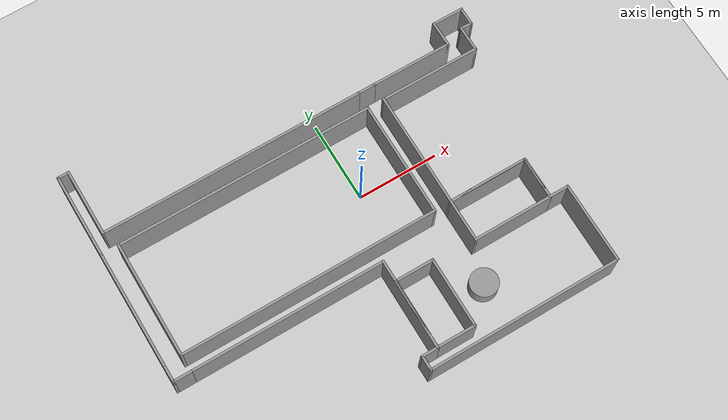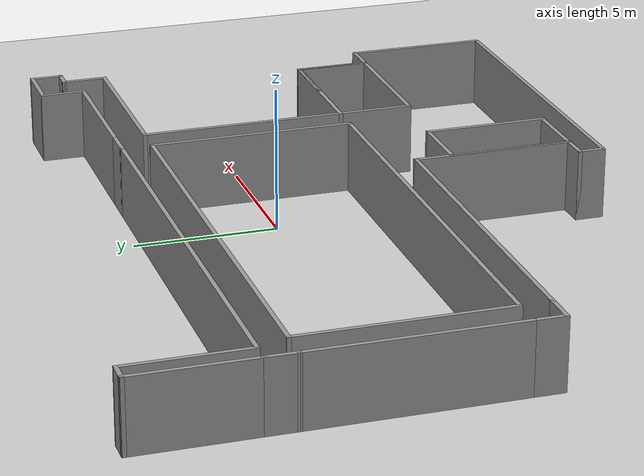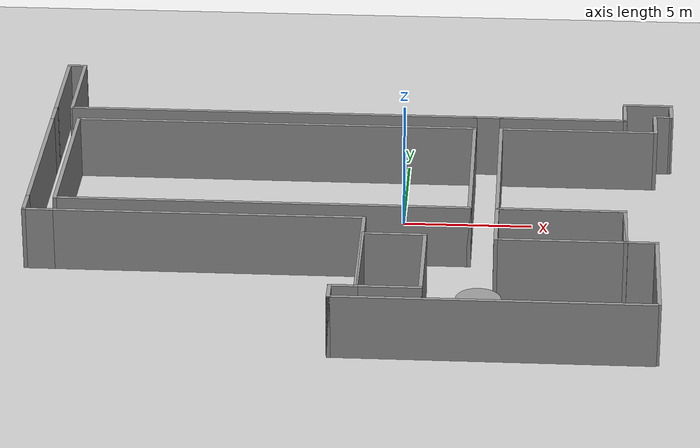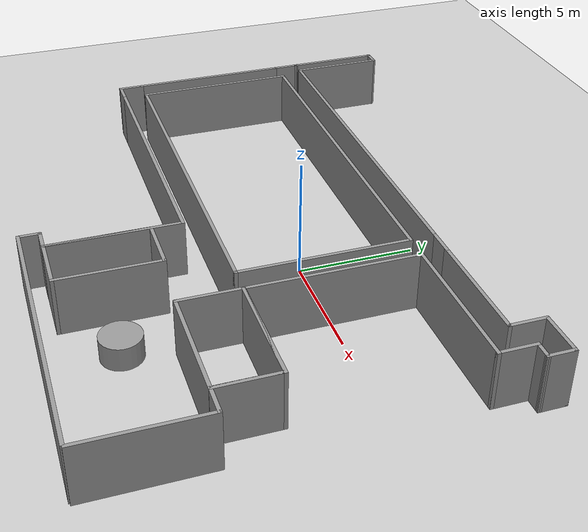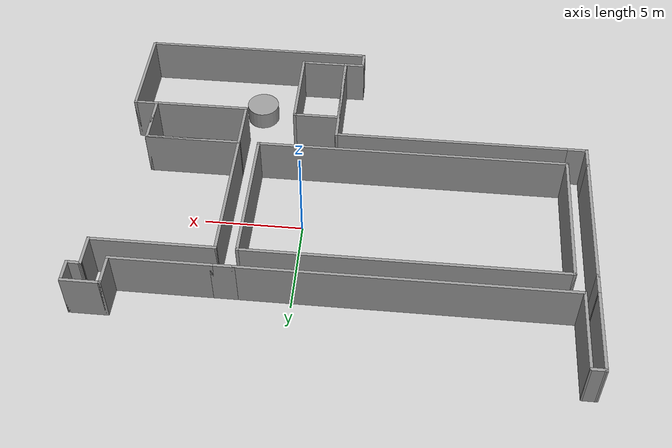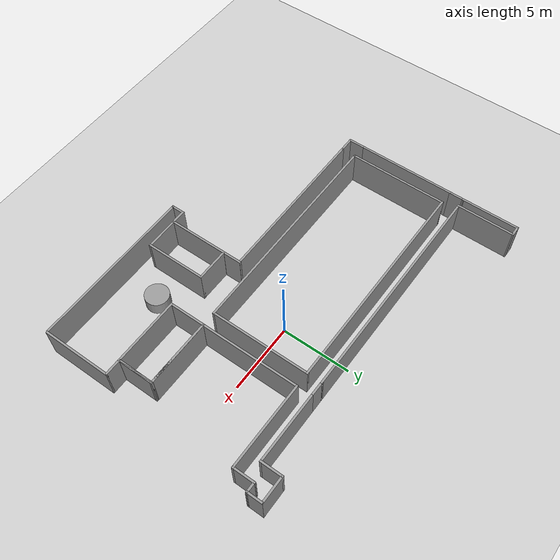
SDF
<sdf version="1.6">
 <world name="default">
  <light name="sun" type="directional">
   <pose>0 0 10 0 -0 0</pose>
   <diffuse>0.8 0.8 0.8 1</diffuse>
   <specular>0.2 0.2 0.2 1</specular>
   <attenuation>
    <range>1000</range>
    <constant>0.9</constant>
    <linear>0.01</linear>
    <quadratic>0.001</quadratic>
   </attenuation>
   <direction>-0.5 0.1 -0.9</direction>
  </light>
  <model name="ground_plane">
   <static>1</static>
   <link name="link">
    <collision name="collision">
     <geometry><plane><normal>0 0 1</normal><size>100 100</size></plane></geometry>
     <surface>
      <contact><collide_bitmask>65535</collide_bitmask></contact>
      <friction><ode><mu>100</mu><mu2>50</mu2></ode></friction>
     </surface>
    </collision>
    <visual name="visual">
     <cast_shadows>0</cast_shadows>
     <geometry><plane><normal>0 0 1</normal><size>100 100</size></plane></geometry>
     <material>
      <script><uri>file://media/materials/scripts/gazebo.material</uri><name>Gazebo/Grey</name></script>
     </material>
    </visual>
   </link>
  </model>
  <gravity>0 0 -9.8</gravity>
  <magnetic_field>6e-06 2.3e-05 -4.2e-05</magnetic_field>
  <atmosphere type="adiabatic"/>
  <physics name="default_physics" default="0" type="ode">
   <max_step_size>0.001</max_step_size>
   <real_time_factor>1</real_time_factor>
   <real_time_update_rate>1000</real_time_update_rate>
  </physics>
  <scene><ambient>0.4 0.4 0.4 1</ambient><background>0.7 0.7 0.7 1</background><shadows>1</shadows></scene>
  <audio><device>default</device></audio>
  <spherical_coordinates>
   <surface_model>EARTH_WGS84</surface_model>
   <latitude_deg>0</latitude_deg>
   <longitude_deg>0</longitude_deg>
   <elevation>0</elevation>
   <heading_deg>0</heading_deg>
  </spherical_coordinates>
  <model name="4f_new">
   <pose>-1.89499 -1.06681 0 0 -0 0</pose>
   <link name="Wall_0">
    <collision name="Wall_0_Collision">
     <geometry><box><size>16 0.15 2.5</size></box></geometry>
     <pose>0 0 1.25 0 -0 0</pose>
    </collision>
    <visual name="Wall_0_Visual">
     <pose>0 0 1.25 0 -0 0</pose>
     <geometry><box><size>16 0.15 2.5</size></box></geometry>
     <material>
      <script><uri>file://media/materials/scripts/gazebo.material</uri><name>Gazebo/Grey</name></script>
      <ambient>1 1 1 1</ambient>
     </material>
     <meta><layer>0</layer></meta>
    </visual>
    <pose>-3.39549 4.70032 0 0 -0 0</pose>
   </link>
   <link name="Wall_2">
    <collision name="Wall_2_Collision">
     <geometry><box><size>7.25 0.15 2.5</size></box></geometry>
     <pose>0 0 1.25 0 -0 0</pose>
    </collision>
    <visual name="Wall_2_Visual">
     <pose>0 0 1.25 0 -0 0</pose>
     <geometry><box><size>7.25 0.15 2.5</size></box></geometry>
     <material>
      <script><uri>file://media/materials/scripts/gazebo.material</uri><name>Gazebo/Grey</name></script>
      <ambient>1 1 1 1</ambient>
     </material>
     <meta><layer>0</layer></meta>
    </visual>
    <pose>-11.3205 1.15032 0 0 -0 -1.5708</pose>
   </link>
   <link name="Wall_32">
    <collision name="Wall_32_Collision">
     <geometry><box><size>1.2 0.15 2.5</size></box></geometry>
     <pose>0 0 1.25 0 -0 0</pose>
    </collision>
    <visual name="Wall_32_Visual">
     <pose>0 0 1.25 0 -0 0</pose>
     <geometry><box><size>1.2 0.15 2.5</size></box></geometry>
     <material>
      <script><uri>file://media/materials/scripts/gazebo.material</uri><name>Gazebo/Grey</name></script>
      <ambient>1 1 1 1</ambient>
     </material>
     <meta><layer>0</layer></meta>
    </visual>
    <pose>5.05451 5.75032 0 0 -0 0</pose>
   </link>
   <link name="Wall_34">
    <collision name="Wall_34_Collision">
     <geometry><box><size>1.2 0.15 2.5</size></box></geometry>
     <pose>0 0 1.25 0 -0 0</pose>
    </collision>
    <visual name="Wall_34_Visual">
     <pose>0 0 1.25 0 -0 0</pose>
     <geometry><box><size>1.2 0.15 2.5</size></box></geometry>
     <material>
      <script><uri>file://media/materials/scripts/gazebo.material</uri><name>Gazebo/Grey</name></script>
      <ambient>1 1 1 1</ambient>
     </material>
     <meta><layer>0</layer></meta>
    </visual>
    <pose>-11.8455 -3.44968 0 0 -0 3.14159</pose>
   </link>
   <link name="Wall_38">
    <collision name="Wall_38_Collision">
     <geometry><box><size>12.05 0.15 2.5</size></box></geometry>
     <pose>0 0 1.25 0 -0 0</pose>
    </collision>
    <visual name="Wall_38_Visual">
     <pose>0 0 1.25 0 -0 0</pose>
     <geometry><box><size>12.05 0.15 2.5</size></box></geometry>
     <material>
      <script><uri>file://media/materials/scripts/gazebo.material</uri><name>Gazebo/Grey</name></script>
      <ambient>1 1 1 1</ambient>
     </material>
     <meta><layer>0</layer></meta>
    </visual>
    <pose>-5.37049 -3.44968 0 0 -0 0</pose>
   </link>
   <link name="Wall_4">
    <collision name="Wall_4_Collision">
     <geometry><box><size>16 0.15 2.5</size></box></geometry>
     <pose>0 0 1.25 0 -0 0</pose>
    </collision>
    <visual name="Wall_4_Visual">
     <pose>0 0 1.25 0 -0 0</pose>
     <geometry><box><size>16 0.15 2.5</size></box></geometry>
     <material>
      <script><uri>file://media/materials/scripts/gazebo.material</uri><name>Gazebo/Grey</name></script>
      <ambient>1 1 1 1</ambient>
     </material>
     <meta><layer>0</layer></meta>
    </visual>
    <pose>-3.39549 -2.39968 0 0 -0 0</pose>
   </link>
   <link name="Wall_40">
    <collision name="Wall_40_Collision">
     <geometry><box><size>16.3207 0.15 2.5</size></box></geometry>
     <pose>0 0 1.25 0 -0 0</pose>
    </collision>
    <visual name="Wall_40_Visual">
     <pose>0 0 1.25 0 -0 0</pose>
     <geometry><box><size>16.3207 0.15 2.5</size></box></geometry>
     <material>
      <script><uri>file://media/materials/scripts/gazebo.material</uri><name>Gazebo/Grey</name></script>
      <ambient>1 1 1 1</ambient>
     </material>
     <meta><layer>0</layer></meta>
    </visual>
    <pose>-3.55583 5.74997 0 0 -0 4.3e-05</pose>
   </link>
   <link name="Wall_42">
    <collision name="Wall_42_Collision">
     <geometry><box><size>7.25 0.15 2.5</size></box></geometry>
     <pose>0 0 1.25 0 -0 0</pose>
    </collision>
    <visual name="Wall_42_Visual">
     <pose>0 0 1.25 0 -0 0</pose>
     <geometry><box><size>7.25 0.15 2.5</size></box></geometry>
     <material>
      <script><uri>file://media/materials/scripts/gazebo.material</uri><name>Gazebo/Grey</name></script>
      <ambient>1 1 1 1</ambient>
     </material>
     <meta><layer>0</layer></meta>
    </visual>
    <pose>-12.3705 1.15032 0 0 -0 -1.5708</pose>
   </link>
   <link name="Wall_44">
    <collision name="Wall_44_Collision">
     <geometry><box><size>1.19931 0.15 2.5</size></box></geometry>
     <pose>0 0 1.25 0 -0 0</pose>
    </collision>
    <visual name="Wall_44_Visual">
     <pose>0 0 1.25 0 -0 0</pose>
     <geometry><box><size>1.19931 0.15 2.5</size></box></geometry>
     <material>
      <script><uri>file://media/materials/scripts/gazebo.material</uri><name>Gazebo/Grey</name></script>
      <ambient>1 1 1 1</ambient>
     </material>
     <meta><layer>0</layer></meta>
    </visual>
    <pose>-12.3695 5.22497 0 0 -0 -1.57265</pose>
   </link>
   <link name="Wall_46">
    <collision name="Wall_46_Collision">
     <geometry><box><size>1.2 0.15 2.5</size></box></geometry>
     <pose>0 0 1.25 0 -0 0</pose>
    </collision>
    <visual name="Wall_46_Visual">
     <pose>0 0 1.25 0 -0 0</pose>
     <geometry><box><size>1.2 0.15 2.5</size></box></geometry>
     <material>
      <script><uri>file://media/materials/scripts/gazebo.material</uri><name>Gazebo/Grey</name></script>
      <ambient>1 1 1 1</ambient>
     </material>
     <meta><layer>0</layer></meta>
    </visual>
    <pose>-12.3705 -2.92468 0 0 -0 -1.5708</pose>
   </link>
   <link name="Wall_52">
    <collision name="Wall_52_Collision">
     <geometry><box><size>7.25 0.15 2.5</size></box></geometry>
     <pose>0 0 1.25 0 -0 0</pose>
    </collision>
    <visual name="Wall_52_Visual">
     <pose>0 0 1.25 0 -0 0</pose>
     <geometry><box><size>7.25 0.15 2.5</size></box></geometry>
     <material>
      <script><uri>file://media/materials/scripts/gazebo.material</uri><name>Gazebo/Grey</name></script>
      <ambient>1 1 1 1</ambient>
     </material>
     <meta><layer>0</layer></meta>
    </visual>
    <pose>5.57951 1.15032 0 0 -0 -1.5708</pose>
   </link>
   <link name="Wall_54">
    <collision name="Wall_54_Collision">
     <geometry><box><size>4.25 0.15 2.5</size></box></geometry>
     <pose>0 0 1.25 0 -0 0</pose>
    </collision>
    <visual name="Wall_54_Visual">
     <pose>0 0 1.25 0 -0 0</pose>
     <geometry><box><size>4.25 0.15 2.5</size></box></geometry>
     <material>
      <script><uri>file://media/materials/scripts/gazebo.material</uri><name>Gazebo/Grey</name></script>
      <ambient>1 1 1 1</ambient>
     </material>
     <meta><layer>0</layer></meta>
    </visual>
    <pose>-12.3685 7.79962 0 0 -0 1.5708</pose>
   </link>
   <link name="Wall_58">
    <collision name="Wall_58_Collision">
     <geometry><box><size>4.24848 0.15 2.5</size></box></geometry>
     <pose>0 0 1.25 0 -0 0</pose>
    </collision>
    <visual name="Wall_58_Visual">
     <pose>0 0 1.25 0 -0 0</pose>
     <geometry><box><size>4.24848 0.15 2.5</size></box></geometry>
     <material>
      <script><uri>file://media/materials/scripts/gazebo.material</uri><name>Gazebo/Grey</name></script>
      <ambient>1 1 1 1</ambient>
     </material>
     <meta><layer>0</layer></meta>
    </visual>
    <pose>-11.7211 7.79985 0 0 -0 -1.57003</pose>
   </link>
   <link name="Wall_6">
    <collision name="Wall_6_Collision">
     <geometry><box><size>7.25 0.15 2.5</size></box></geometry>
     <pose>0 0 1.25 0 -0 0</pose>
    </collision>
    <visual name="Wall_6_Visual">
     <pose>0 0 1.25 0 -0 0</pose>
     <geometry><box><size>7.25 0.15 2.5</size></box></geometry>
     <material>
      <script><uri>file://media/materials/scripts/gazebo.material</uri><name>Gazebo/Grey</name></script>
      <ambient>1 1 1 1</ambient>
     </material>
     <meta><layer>0</layer></meta>
    </visual>
    <pose>4.52951 1.15032 0 0 -0 -1.5708</pose>
   </link>
   <link name="Wall_60">
    <collision name="Wall_60_Collision">
     <geometry><box><size>5.09 0.15 2.5</size></box></geometry>
     <pose>0 0 1.25 0 -0 0</pose>
    </collision>
    <visual name="Wall_60_Visual">
     <pose>0 0 1.25 0 -0 0</pose>
     <geometry><box><size>5.09 0.15 2.5</size></box></geometry>
     <material>
      <script><uri>file://media/materials/scripts/gazebo.material</uri><name>Gazebo/Grey</name></script>
      <ambient>1 1 1 1</ambient>
     </material>
     <meta><layer>0</layer></meta>
    </visual>
    <pose>8.04951 5.75032 0 0 -0 0</pose>
   </link>
   <link name="Wall_63">
    <collision name="Wall_63_Collision">
     <geometry><box><size>0.795906 0.15 2.5</size></box></geometry>
     <pose>0 0 1.25 0 -0 0</pose>
    </collision>
    <visual name="Wall_63_Visual">
     <pose>0 0 1.25 0 -0 0</pose>
     <geometry><box><size>0.795906 0.15 2.5</size></box></geometry>
     <material>
      <script><uri>file://media/materials/scripts/gazebo.material</uri><name>Gazebo/Grey</name></script>
      <ambient>1 1 1 1</ambient>
     </material>
     <meta><layer>0</layer></meta>
    </visual>
    <pose>-12.0456 9.84935 0 0 -0 -0.000837</pose>
   </link>
   <link name="Wall_65">
    <collision name="Wall_65_Collision">
     <geometry><box><size>5 0.15 2.5</size></box></geometry>
     <pose>0 0 1.25 0 -0 0</pose>
    </collision>
    <visual name="Wall_65_Visual">
     <pose>0 0 1.25 0 -0 0</pose>
     <geometry><box><size>5 0.15 2.5</size></box></geometry>
     <material>
      <script><uri>file://media/materials/scripts/gazebo.material</uri><name>Gazebo/Grey</name></script>
      <ambient>1 1 1 1</ambient>
     </material>
     <meta><layer>0</layer></meta>
    </visual>
    <pose>8.00451 -2.39968 0 0 -0 0</pose>
   </link>
   <link name="Wall_67">
    <collision name="Wall_67_Collision">
     <geometry><box><size>2.7 0.15 2.5</size></box></geometry>
     <pose>0 0 1.25 0 -0 0</pose>
    </collision>
    <visual name="Wall_67_Visual">
     <pose>0 0 1.25 0 -0 0</pose>
     <geometry><box><size>2.7 0.15 2.5</size></box></geometry>
     <material>
      <script><uri>file://media/materials/scripts/gazebo.material</uri><name>Gazebo/Grey</name></script>
      <ambient>1 1 1 1</ambient>
     </material>
     <meta><layer>0</layer></meta>
    </visual>
    <pose>10.4295 -3.67468 0 0 -0 -1.5708</pose>
   </link>
   <link name="Wall_69">
    <collision name="Wall_69_Collision">
     <geometry><box><size>1.3 0.15 2.5</size></box></geometry>
     <pose>0 0 1.25 0 -0 0</pose>
    </collision>
    <visual name="Wall_69_Visual">
     <pose>0 0 1.25 0 -0 0</pose>
     <geometry><box><size>1.3 0.15 2.5</size></box></geometry>
     <material>
      <script><uri>file://media/materials/scripts/gazebo.material</uri><name>Gazebo/Grey</name></script>
      <ambient>1 1 1 1</ambient>
     </material>
     <meta><layer>0</layer></meta>
    </visual>
    <pose>11.0045 -4.94968 0 0 -0 0</pose>
   </link>
   <link name="Wall_71">
    <collision name="Wall_71_Collision">
     <geometry><box><size>5 0.15 2.5</size></box></geometry>
     <pose>0 0 1.25 0 -0 0</pose>
    </collision>
    <visual name="Wall_71_Visual">
     <pose>0 0 1.25 0 -0 0</pose>
     <geometry><box><size>5 0.15 2.5</size></box></geometry>
     <material>
      <script><uri>file://media/materials/scripts/gazebo.material</uri><name>Gazebo/Grey</name></script>
      <ambient>1 1 1 1</ambient>
     </material>
     <meta><layer>0</layer></meta>
    </visual>
    <pose>11.5795 -7.37468 0 0 -0 -1.5708</pose>
   </link>
   <link name="Wall_73">
    <collision name="Wall_73_Collision">
     <geometry><box><size>5.7 0.15 2.5</size></box></geometry>
     <pose>0 0 1.25 0 -0 0</pose>
    </collision>
    <visual name="Wall_73_Visual">
     <pose>0 0 1.25 0 -0 0</pose>
     <geometry><box><size>5.7 0.15 2.5</size></box></geometry>
     <material>
      <script><uri>file://media/materials/scripts/gazebo.material</uri><name>Gazebo/Grey</name></script>
      <ambient>1 1 1 1</ambient>
     </material>
     <meta><layer>0</layer></meta>
    </visual>
    <pose>0.579506 -6.22468 0 0 -0 -1.5708</pose>
   </link>
   <link name="Wall_75">
    <collision name="Wall_75_Collision">
     <geometry><box><size>1.1 0.15 2.5</size></box></geometry>
     <pose>0 0 1.25 0 -0 0</pose>
    </collision>
    <visual name="Wall_75_Visual">
     <pose>0 0 1.25 0 -0 0</pose>
     <geometry><box><size>1.1 0.15 2.5</size></box></geometry>
     <material>
      <script><uri>file://media/materials/scripts/gazebo.material</uri><name>Gazebo/Grey</name></script>
      <ambient>1 1 1 1</ambient>
     </material>
     <meta><layer>0</layer></meta>
    </visual>
    <pose>0.104506 -8.99968 0 0 -0 3.14159</pose>
   </link>
   <link name="Wall_77">
    <collision name="Wall_77_Collision">
     <geometry><box><size>1 0.15 2.5</size></box></geometry>
     <pose>0 0 1.25 0 -0 0</pose>
    </collision>
    <visual name="Wall_77_Visual">
     <pose>0 0 1.25 0 -0 0</pose>
     <geometry><box><size>1 0.15 2.5</size></box></geometry>
     <material>
      <script><uri>file://media/materials/scripts/gazebo.material</uri><name>Gazebo/Grey</name></script>
      <ambient>1 1 1 1</ambient>
     </material>
     <meta><layer>0</layer></meta>
    </visual>
    <pose>-0.370494 -9.42468 0 0 -0 -1.5708</pose>
   </link>
   <link name="Wall_79">
    <collision name="Wall_79_Collision">
     <geometry><box><size>12 0.15 2.5</size></box></geometry>
     <pose>0 0 1.25 0 -0 0</pose>
    </collision>
    <visual name="Wall_79_Visual">
     <pose>0 0 1.25 0 -0 0</pose>
     <geometry><box><size>12 0.15 2.5</size></box></geometry>
     <material>
      <script><uri>file://media/materials/scripts/gazebo.material</uri><name>Gazebo/Grey</name></script>
      <ambient>1 1 1 1</ambient>
     </material>
     <meta><layer>0</layer></meta>
    </visual>
    <pose>5.55451 -9.84968 0 0 -0 0</pose>
   </link>
   <link name="Wall_81">
    <collision name="Wall_81_Collision">
     <geometry><box><size>1.64 0.15 2.5</size></box></geometry>
     <pose>0 0 1.25 0 -0 0</pose>
    </collision>
    <visual name="Wall_81_Visual">
     <pose>0 0 1.25 0 -0 0</pose>
     <geometry><box><size>1.64 0.15 2.5</size></box></geometry>
     <material>
      <script><uri>file://media/materials/scripts/gazebo.material</uri><name>Gazebo/Grey</name></script>
      <ambient>1 1 1 1</ambient>
     </material>
     <meta><layer>0</layer></meta>
    </visual>
    <pose>10.5195 6.49532 0 0 -0 1.5708</pose>
   </link>
   <link name="Wall_85">
    <collision name="Wall_85_Collision">
     <geometry><box><size>6.28 0.15 2.5</size></box></geometry>
     <pose>0 0 1.25 0 -0 0</pose>
    </collision>
    <visual name="Wall_85_Visual">
     <pose>0 0 1.25 0 -0 0</pose>
     <geometry><box><size>6.28 0.15 2.5</size></box></geometry>
     <material>
      <script><uri>file://media/materials/scripts/gazebo.material</uri><name>Gazebo/Grey</name></script>
      <ambient>1 1 1 1</ambient>
     </material>
     <meta><layer>0</layer></meta>
    </visual>
    <pose>8.64451 4.70032 0 0 -0 0</pose>
   </link>
   <link name="Wall_87">
    <collision name="Wall_87_Collision">
     <geometry><box><size>2 0.15 2.5</size></box></geometry>
     <pose>0 0 1.25 0 -0 0</pose>
    </collision>
    <visual name="Wall_87_Visual">
     <pose>0 0 1.25 0 -0 0</pose>
     <geometry><box><size>2 0.15 2.5</size></box></geometry>
     <material>
      <script><uri>file://media/materials/scripts/gazebo.material</uri><name>Gazebo/Grey</name></script>
      <ambient>1 1 1 1</ambient>
     </material>
     <meta><layer>0</layer></meta>
    </visual>
    <pose>11.4445 7.24032 0 0 -0 0</pose>
   </link>
   <link name="Wall_89">
    <collision name="Wall_89_Collision">
     <geometry><box><size>1.65 0.15 2.5</size></box></geometry>
     <pose>0 0 1.25 0 -0 0</pose>
    </collision>
    <visual name="Wall_89_Visual">
     <pose>0 0 1.25 0 -0 0</pose>
     <geometry><box><size>1.65 0.15 2.5</size></box></geometry>
     <material>
      <script><uri>file://media/materials/scripts/gazebo.material</uri><name>Gazebo/Grey</name></script>
      <ambient>1 1 1 1</ambient>
     </material>
     <meta><layer>0</layer></meta>
    </visual>
    <pose>11.7095 5.45032 0 0 -0 1.5708</pose>
   </link>
   <link name="Wall_91">
    <collision name="Wall_91_Collision">
     <geometry><box><size>1.2 0.15 2.5</size></box></geometry>
     <pose>0 0 1.25 0 -0 0</pose>
    </collision>
    <visual name="Wall_91_Visual">
     <pose>0 0 1.25 0 -0 0</pose>
     <geometry><box><size>1.2 0.15 2.5</size></box></geometry>
     <material>
      <script><uri>file://media/materials/scripts/gazebo.material</uri><name>Gazebo/Grey</name></script>
      <ambient>1 1 1 1</ambient>
     </material>
     <meta><layer>0</layer></meta>
    </visual>
    <pose>12.3695 6.71532 0 0 -0 -1.5708</pose>
   </link>
   <link name="Wall_93">
    <collision name="Wall_93_Collision">
     <geometry><box><size>0.810076 0.15 2.5</size></box></geometry>
     <pose>0 0 1.25 0 -0 0</pose>
    </collision>
    <visual name="Wall_93_Visual">
     <pose>0 0 1.25 0 -0 0</pose>
     <geometry><box><size>0.810076 0.15 2.5</size></box></geometry>
     <material>
      <script><uri>file://media/materials/scripts/gazebo.material</uri><name>Gazebo/Grey</name></script>
      <ambient>1 1 1 1</ambient>
     </material>
     <meta><layer>0</layer></meta>
    </visual>
    <pose>12.0395 6.19532 0 0 -0 3.12644</pose>
   </link>
   <static>1</static>
  </model>
  <model name="2">
   <pose>-0.136055 -7.93459 0 0 -0 0</pose>
   <link name="Wall_10">
    <collision name="Wall_10_Collision">
     <geometry><box><size>2.5 0.15 2.5</size></box></geometry>
     <pose>0 0 1.25 0 -0 0</pose>
    </collision>
    <visual name="Wall_10_Visual">
     <pose>0 0 1.25 0 -0 0</pose>
     <geometry><box><size>2.5 0.15 2.5</size></box></geometry>
     <material>
      <script><uri>file://media/materials/scripts/gazebo.material</uri><name>Gazebo/Grey</name></script>
      <ambient>1 1 1 1</ambient>
     </material>
     <meta><layer>0</layer></meta>
    </visual>
    <pose>-0 -2.125 0 0 -0 3.14159</pose>
   </link>
   <link name="Wall_12">
    <collision name="Wall_12_Collision">
     <geometry><box><size>4.4 0.15 2.5</size></box></geometry>
     <pose>0 0 1.25 0 -0 0</pose>
    </collision>
    <visual name="Wall_12_Visual">
     <pose>0 0 1.25 0 -0 0</pose>
     <geometry><box><size>4.4 0.15 2.5</size></box></geometry>
     <material>
      <script><uri>file://media/materials/scripts/gazebo.material</uri><name>Gazebo/Grey</name></script>
      <ambient>1 1 1 1</ambient>
     </material>
     <meta><layer>0</layer></meta>
    </visual>
    <pose>-1.175 0 0 0 -0 1.5708</pose>
   </link>
   <link name="Wall_14">
    <collision name="Wall_14_Collision">
     <geometry><box><size>2.5 0.15 2.5</size></box></geometry>
     <pose>0 0 1.25 0 -0 0</pose>
    </collision>
    <visual name="Wall_14_Visual">
     <pose>0 0 1.25 0 -0 0</pose>
     <geometry><box><size>2.5 0.15 2.5</size></box></geometry>
     <material>
      <script><uri>file://media/materials/scripts/gazebo.material</uri><name>Gazebo/Grey</name></script>
      <ambient>1 1 1 1</ambient>
     </material>
     <meta><layer>0</layer></meta>
    </visual>
    <pose>-0 2.125 0 0 -0 0</pose>
   </link>
   <link name="Wall_8">
    <collision name="Wall_8_Collision">
     <geometry><box><size>4.4 0.15 2.5</size></box></geometry>
     <pose>0 0 1.25 0 -0 0</pose>
    </collision>
    <visual name="Wall_8_Visual">
     <pose>0 0 1.25 0 -0 0</pose>
     <geometry><box><size>4.4 0.15 2.5</size></box></geometry>
     <material>
      <script><uri>file://media/materials/scripts/gazebo.material</uri><name>Gazebo/Grey</name></script>
      <ambient>1 1 1 1</ambient>
     </material>
     <meta><layer>0</layer></meta>
    </visual>
    <pose>1.175 0 0 0 -0 -1.5708</pose>
   </link>
   <static>1</static>
  </model>
  <model name="1">
   <pose>6.10581 -4.7455 0 0 -0 0</pose>
   <link name="Wall_0">
    <collision name="Wall_0_Collision">
     <geometry><box><size>2.7 0.15 2.5</size></box></geometry>
     <pose>0 0 1.25 0 -0 0</pose>
    </collision>
    <visual name="Wall_0_Visual">
     <pose>0 0 1.25 0 -0 0</pose>
     <geometry><box><size>2.7 0.15 2.5</size></box></geometry>
     <material>
      <script><uri>file://media/materials/scripts/gazebo.material</uri><name>Gazebo/Grey</name></script>
      <ambient>1 1 1 1</ambient>
     </material>
     <meta><layer>0</layer></meta>
    </visual>
    <pose>-2.425 -0 0 0 -0 -1.5708</pose>
   </link>
   <link name="Wall_2">
    <collision name="Wall_2_Collision">
     <geometry><box><size>5 0.15 2.5</size></box></geometry>
     <pose>0 0 1.25 0 -0 0</pose>
    </collision>
    <visual name="Wall_2_Visual">
     <pose>0 0 1.25 0 -0 0</pose>
     <geometry><box><size>5 0.15 2.5</size></box></geometry>
     <material>
      <script><uri>file://media/materials/scripts/gazebo.material</uri><name>Gazebo/Grey</name></script>
      <ambient>1 1 1 1</ambient>
     </material>
     <meta><layer>0</layer></meta>
    </visual>
    <pose>-0 -1.275 0 0 -0 0</pose>
   </link>
   <link name="Wall_4">
    <collision name="Wall_4_Collision">
     <geometry><box><size>5 0.15 2.5</size></box></geometry>
     <pose>0 0 1.25 0 -0 0</pose>
    </collision>
    <visual name="Wall_4_Visual">
     <pose>0 0 1.25 0 -0 0</pose>
     <geometry><box><size>5 0.15 2.5</size></box></geometry>
     <material>
      <script><uri>file://media/materials/scripts/gazebo.material</uri><name>Gazebo/Grey</name></script>
      <ambient>1 1 1 1</ambient>
     </material>
     <meta><layer>0</layer></meta>
    </visual>
    <pose>-0 1.275 0 0 -0 0</pose>
   </link>
   <link name="Wall_6">
    <collision name="Wall_6_Collision">
     <geometry><box><size>2.7 0.15 2.5</size></box></geometry>
     <pose>0 0 1.25 0 -0 0</pose>
    </collision>
    <visual name="Wall_6_Visual">
     <pose>0 0 1.25 0 -0 0</pose>
     <geometry><box><size>2.7 0.15 2.5</size></box></geometry>
     <material>
      <script><uri>file://media/materials/scripts/gazebo.material</uri><name>Gazebo/Grey</name></script>
      <ambient>1 1 1 1</ambient>
     </material>
     <meta><layer>0</layer></meta>
    </visual>
    <pose>2.425 -0 0 0 -0 -1.5708</pose>
   </link>
   <static>1</static>
  </model>
  <model name="unit_cylinder">
   <pose>3.1089 -8.00874 0.499996 -5e-06 -5e-06 0</pose>
   <link name="link">
    <inertial>
     <mass>1</mass>
     <inertia><ixx>0.145833</ixx><ixy>0</ixy><ixz>0</ixz><iyy>0.145833</iyy><iyz>0</iyz><izz>0.125</izz></inertia>
    </inertial>
    <collision name="collision">
     <geometry><cylinder><radius>0.854435</radius><length>1</length></cylinder></geometry>
    </collision>
    <visual name="visual">
     <geometry><cylinder><radius>0.854435</radius><length>1</length></cylinder></geometry>
     <material>
      <script><name>Gazebo/Grey</name><uri>file://media/materials/scripts/gazebo.material</uri></script>
     </material>
    </visual>
   </link>
  </model>
 </world>
</sdf>
